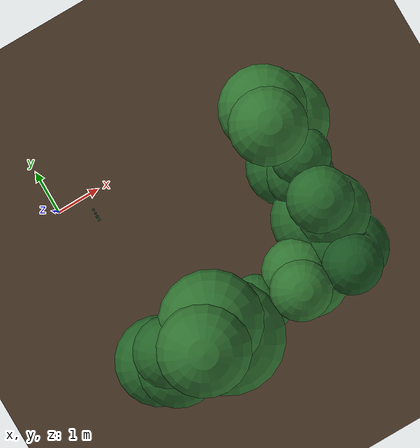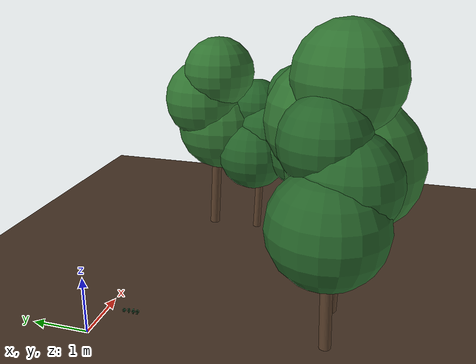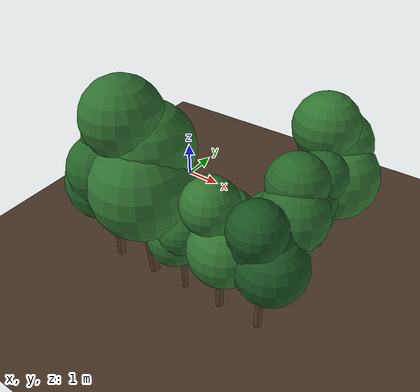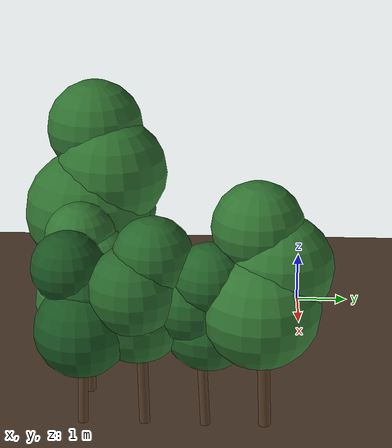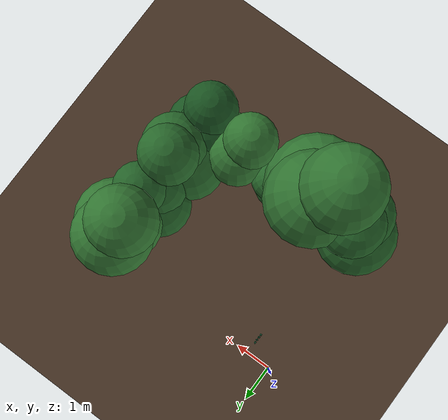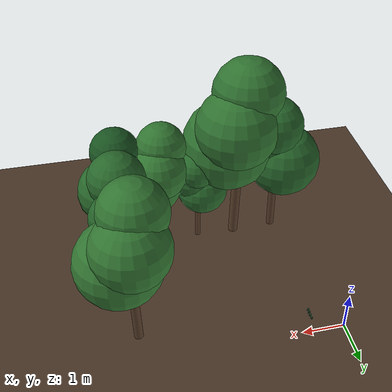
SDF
<sdf version="1.9">
 <world name="jim_field">
  <model name="ground_plane">
   <static>true</static>
   <link name="link">
    <collision name="collision">
     <geometry><plane><normal>0 0 1</normal><size>40 40</size></plane></geometry>
    </collision>
    <visual name="visual">
     <geometry><plane><normal>0 0 1</normal><size>40 40</size></plane></geometry>
     <material>
      <ambient>0.20 0.15 0.11 1</ambient>
      <diffuse>0.30 0.22 0.16 1</diffuse>
      <specular>0.01 0.01 0.01 1</specular>
     </material>
    </visual>
   </link>
  </model>
  <model name="field">
   <static>true</static>
   <pose>0.1837 -0.2516 0 0 0 0</pose>
   <model name="crop_33">
    <static>true</static>
    <pose>0.4928 -0.3405 0 0 0 0</pose>
    <link name="link">
     <visual name="stem">
      <pose>0 0 0.0431 0 0 0</pose>
      <geometry><cylinder><radius>0.0027</radius><length>0.0862</length></cylinder></geometry>
      <material>
       <ambient>0.10 0.22 0.09 1</ambient>
       <diffuse>0.20 0.40 0.16 1</diffuse>
       <specular>0.05 0.06 0.05 1</specular>
      </material>
     </visual>
     <visual name="leaflet_0_0">
      <pose>-0.0174 0.0065 0.0259 0 -0.300 2.7829</pose>
      <geometry><ellipsoid><radii>0.0170 0.0105 0.0016</radii></ellipsoid></geometry>
      <material>
       <ambient>0.096 0.243 0.144 1</ambient>
       <diffuse>0.182 0.466 0.300 1</diffuse>
       <specular>0.05 0.06 0.05 1</specular>
      </material>
     </visual>
     <visual name="leaflet_0_1">
      <pose>0.0174 -0.0065 0.0259 0 -0.300 5.9245</pose>
      <geometry><ellipsoid><radii>0.0170 0.0105 0.0016</radii></ellipsoid></geometry>
      <material>
       <ambient>0.096 0.243 0.144 1</ambient>
       <diffuse>0.182 0.466 0.300 1</diffuse>
       <specular>0.05 0.06 0.05 1</specular>
      </material>
     </visual>
     <visual name="leaflet_1_0">
      <pose>-0.0102 -0.0156 0.0437 0 -0.200 4.1329</pose>
      <geometry><ellipsoid><radii>0.0170 0.0105 0.0016</radii></ellipsoid></geometry>
      <material>
       <ambient>0.096 0.243 0.144 1</ambient>
       <diffuse>0.182 0.466 0.300 1</diffuse>
       <specular>0.05 0.06 0.05 1</specular>
      </material>
     </visual>
     <visual name="leaflet_1_1">
      <pose>0.0102 0.0156 0.0437 0 -0.200 7.2745</pose>
      <geometry><ellipsoid><radii>0.0170 0.0105 0.0016</radii></ellipsoid></geometry>
      <material>
       <ambient>0.096 0.243 0.144 1</ambient>
       <diffuse>0.182 0.466 0.300 1</diffuse>
       <specular>0.05 0.06 0.05 1</specular>
      </material>
     </visual>
     <visual name="leaflet_2_0">
      <pose>0.0130 -0.0133 0.0615 0 -0.100 5.4829</pose>
      <geometry><ellipsoid><radii>0.0170 0.0105 0.0016</radii></ellipsoid></geometry>
      <material>
       <ambient>0.096 0.243 0.144 1</ambient>
       <diffuse>0.182 0.466 0.300 1</diffuse>
       <specular>0.05 0.06 0.05 1</specular>
      </material>
     </visual>
     <visual name="leaflet_2_1">
      <pose>-0.0130 0.0133 0.0615 0 -0.100 8.6245</pose>
      <geometry><ellipsoid><radii>0.0170 0.0105 0.0016</radii></ellipsoid></geometry>
      <material>
       <ambient>0.096 0.243 0.144 1</ambient>
       <diffuse>0.182 0.466 0.300 1</diffuse>
       <specular>0.05 0.06 0.05 1</specular>
      </material>
     </visual>
     <visual name="leaflet_terminal">
      <pose>0 0 0.0902 0 -0.12 2.7829</pose>
      <geometry><ellipsoid><radii>0.0215 0.0140 0.0018</radii></ellipsoid></geometry>
      <material>
       <ambient>0.096 0.243 0.144 1</ambient>
       <diffuse>0.182 0.466 0.300 1</diffuse>
       <specular>0.05 0.06 0.05 1</specular>
      </material>
     </visual>
    </link>
   </model>
   <model name="crop_50">
    <static>true</static>
    <pose>0.4938 -0.2620 0 0 0 0</pose>
    <link name="link">
     <visual name="stem">
      <pose>0 0 0.0416 0 0 0</pose>
      <geometry><cylinder><radius>0.0027</radius><length>0.0831</length></cylinder></geometry>
      <material>
       <ambient>0.10 0.22 0.09 1</ambient>
       <diffuse>0.20 0.40 0.16 1</diffuse>
       <specular>0.05 0.06 0.05 1</specular>
      </material>
     </visual>
     <visual name="leaflet_0_0">
      <pose>0.0183 -0.0024 0.0249 0 -0.300 6.1531</pose>
      <geometry><ellipsoid><radii>0.0170 0.0105 0.0016</radii></ellipsoid></geometry>
      <material>
       <ambient>0.075 0.208 0.116 1</ambient>
       <diffuse>0.140 0.396 0.251 1</diffuse>
       <specular>0.05 0.06 0.05 1</specular>
      </material>
     </visual>
     <visual name="leaflet_0_1">
      <pose>-0.0183 0.0024 0.0249 0 -0.300 9.2947</pose>
      <geometry><ellipsoid><radii>0.0170 0.0105 0.0016</radii></ellipsoid></geometry>
      <material>
       <ambient>0.075 0.208 0.116 1</ambient>
       <diffuse>0.140 0.396 0.251 1</diffuse>
       <specular>0.05 0.06 0.05 1</specular>
      </material>
     </visual>
     <visual name="leaflet_1_0">
      <pose>0.0063 0.0173 0.0378 0 -0.200 7.5031</pose>
      <geometry><ellipsoid><radii>0.0170 0.0105 0.0016</radii></ellipsoid></geometry>
      <material>
       <ambient>0.075 0.208 0.116 1</ambient>
       <diffuse>0.140 0.396 0.251 1</diffuse>
       <specular>0.05 0.06 0.05 1</specular>
      </material>
     </visual>
     <visual name="leaflet_1_1">
      <pose>-0.0063 -0.0173 0.0378 0 -0.200 10.6447</pose>
      <geometry><ellipsoid><radii>0.0170 0.0105 0.0016</radii></ellipsoid></geometry>
      <material>
       <ambient>0.075 0.208 0.116 1</ambient>
       <diffuse>0.140 0.396 0.251 1</diffuse>
       <specular>0.05 0.06 0.05 1</specular>
      </material>
     </visual>
     <visual name="leaflet_2_0">
      <pose>-0.0155 0.0100 0.0507 0 -0.100 8.8531</pose>
      <geometry><ellipsoid><radii>0.0170 0.0105 0.0016</radii></ellipsoid></geometry>
      <material>
       <ambient>0.075 0.208 0.116 1</ambient>
       <diffuse>0.140 0.396 0.251 1</diffuse>
       <specular>0.05 0.06 0.05 1</specular>
      </material>
     </visual>
     <visual name="leaflet_2_1">
      <pose>0.0155 -0.0100 0.0507 0 -0.100 11.9947</pose>
      <geometry><ellipsoid><radii>0.0170 0.0105 0.0016</radii></ellipsoid></geometry>
      <material>
       <ambient>0.075 0.208 0.116 1</ambient>
       <diffuse>0.140 0.396 0.251 1</diffuse>
       <specular>0.05 0.06 0.05 1</specular>
      </material>
     </visual>
     <visual name="leaflet_3_0">
      <pose>-0.0131 -0.0129 0.0636 0 0.000 10.2031</pose>
      <geometry><ellipsoid><radii>0.0170 0.0105 0.0016</radii></ellipsoid></geometry>
      <material>
       <ambient>0.075 0.208 0.116 1</ambient>
       <diffuse>0.140 0.396 0.251 1</diffuse>
       <specular>0.05 0.06 0.05 1</specular>
      </material>
     </visual>
     <visual name="leaflet_3_1">
      <pose>0.0131 0.0129 0.0636 0 0.000 13.3447</pose>
      <geometry><ellipsoid><radii>0.0170 0.0105 0.0016</radii></ellipsoid></geometry>
      <material>
       <ambient>0.075 0.208 0.116 1</ambient>
       <diffuse>0.140 0.396 0.251 1</diffuse>
       <specular>0.05 0.06 0.05 1</specular>
      </material>
     </visual>
     <visual name="leaflet_terminal">
      <pose>0 0 0.0871 0 -0.12 6.1531</pose>
      <geometry><ellipsoid><radii>0.0215 0.0140 0.0018</radii></ellipsoid></geometry>
      <material>
       <ambient>0.075 0.208 0.116 1</ambient>
       <diffuse>0.140 0.396 0.251 1</diffuse>
       <specular>0.05 0.06 0.05 1</specular>
      </material>
     </visual>
    </link>
   </model>
   <model name="crop_67">
    <static>true</static>
    <pose>0.4985 -0.1746 0 0 0 0</pose>
    <link name="link">
     <visual name="stem">
      <pose>0 0 0.0385 0 0 0</pose>
      <geometry><cylinder><radius>0.0026</radius><length>0.0771</length></cylinder></geometry>
      <material>
       <ambient>0.10 0.22 0.09 1</ambient>
       <diffuse>0.20 0.40 0.16 1</diffuse>
       <specular>0.05 0.06 0.05 1</specular>
      </material>
     </visual>
     <visual name="leaflet_0_0">
      <pose>-0.0173 -0.0053 0.0231 0 -0.300 3.4410</pose>
      <geometry><ellipsoid><radii>0.0170 0.0105 0.0016</radii></ellipsoid></geometry>
      <material>
       <ambient>0.070 0.200 0.110 1</ambient>
       <diffuse>0.130 0.380 0.240 1</diffuse>
       <specular>0.05 0.06 0.05 1</specular>
      </material>
     </visual>
     <visual name="leaflet_0_1">
      <pose>0.0173 0.0053 0.0231 0 -0.300 6.5826</pose>
      <geometry><ellipsoid><radii>0.0170 0.0105 0.0016</radii></ellipsoid></geometry>
      <material>
       <ambient>0.070 0.200 0.110 1</ambient>
       <diffuse>0.130 0.380 0.240 1</diffuse>
       <specular>0.05 0.06 0.05 1</specular>
      </material>
     </visual>
     <visual name="leaflet_1_0">
      <pose>0.0014 -0.0181 0.0391 0 -0.200 4.7910</pose>
      <geometry><ellipsoid><radii>0.0170 0.0105 0.0016</radii></ellipsoid></geometry>
      <material>
       <ambient>0.070 0.200 0.110 1</ambient>
       <diffuse>0.130 0.380 0.240 1</diffuse>
       <specular>0.05 0.06 0.05 1</specular>
      </material>
     </visual>
     <visual name="leaflet_1_1">
      <pose>-0.0014 0.0181 0.0391 0 -0.200 7.9326</pose>
      <geometry><ellipsoid><radii>0.0170 0.0105 0.0016</radii></ellipsoid></geometry>
      <material>
       <ambient>0.070 0.200 0.110 1</ambient>
       <diffuse>0.130 0.380 0.240 1</diffuse>
       <specular>0.05 0.06 0.05 1</specular>
      </material>
     </visual>
     <visual name="leaflet_2_0">
      <pose>0.0179 -0.0026 0.0550 0 -0.100 6.1410</pose>
      <geometry><ellipsoid><radii>0.0170 0.0105 0.0016</radii></ellipsoid></geometry>
      <material>
       <ambient>0.070 0.200 0.110 1</ambient>
       <diffuse>0.130 0.380 0.240 1</diffuse>
       <specular>0.05 0.06 0.05 1</specular>
      </material>
     </visual>
     <visual name="leaflet_2_1">
      <pose>-0.0179 0.0026 0.0550 0 -0.100 9.2826</pose>
      <geometry><ellipsoid><radii>0.0170 0.0105 0.0016</radii></ellipsoid></geometry>
      <material>
       <ambient>0.070 0.200 0.110 1</ambient>
       <diffuse>0.130 0.380 0.240 1</diffuse>
       <specular>0.05 0.06 0.05 1</specular>
      </material>
     </visual>
     <visual name="leaflet_terminal">
      <pose>0 0 0.0811 0 -0.12 3.4410</pose>
      <geometry><ellipsoid><radii>0.0215 0.0140 0.0018</radii></ellipsoid></geometry>
      <material>
       <ambient>0.070 0.200 0.110 1</ambient>
       <diffuse>0.130 0.380 0.240 1</diffuse>
       <specular>0.05 0.06 0.05 1</specular>
      </material>
     </visual>
    </link>
   </model>
   <model name="crop_84">
    <static>true</static>
    <pose>0.4932 -0.0889 0 0 0 0</pose>
    <link name="link">
     <visual name="stem">
      <pose>0 0 0.0365 0 0 0</pose>
      <geometry><cylinder><radius>0.0026</radius><length>0.0731</length></cylinder></geometry>
      <material>
       <ambient>0.10 0.22 0.09 1</ambient>
       <diffuse>0.20 0.40 0.16 1</diffuse>
       <specular>0.05 0.06 0.05 1</specular>
      </material>
     </visual>
     <visual name="leaflet_0_0">
      <pose>-0.0137 0.0115 0.0219 0 -0.300 2.4420</pose>
      <geometry><ellipsoid><radii>0.0170 0.0105 0.0016</radii></ellipsoid></geometry>
      <material>
       <ambient>0.090 0.233 0.137 1</ambient>
       <diffuse>0.170 0.447 0.287 1</diffuse>
       <specular>0.05 0.06 0.05 1</specular>
      </material>
     </visual>
     <visual name="leaflet_0_1">
      <pose>0.0137 -0.0115 0.0219 0 -0.300 5.5836</pose>
      <geometry><ellipsoid><radii>0.0170 0.0105 0.0016</radii></ellipsoid></geometry>
      <material>
       <ambient>0.090 0.233 0.137 1</ambient>
       <diffuse>0.170 0.447 0.287 1</diffuse>
       <specular>0.05 0.06 0.05 1</specular>
      </material>
     </visual>
     <visual name="leaflet_1_0">
      <pose>-0.0142 -0.0108 0.0370 0 -0.200 3.7920</pose>
      <geometry><ellipsoid><radii>0.0170 0.0105 0.0016</radii></ellipsoid></geometry>
      <material>
       <ambient>0.090 0.233 0.137 1</ambient>
       <diffuse>0.170 0.447 0.287 1</diffuse>
       <specular>0.05 0.06 0.05 1</specular>
      </material>
     </visual>
     <visual name="leaflet_1_1">
      <pose>0.0142 0.0108 0.0370 0 -0.200 6.9336</pose>
      <geometry><ellipsoid><radii>0.0170 0.0105 0.0016</radii></ellipsoid></geometry>
      <material>
       <ambient>0.090 0.233 0.137 1</ambient>
       <diffuse>0.170 0.447 0.287 1</diffuse>
       <specular>0.05 0.06 0.05 1</specular>
      </material>
     </visual>
     <visual name="leaflet_2_0">
      <pose>0.0075 -0.0163 0.0521 0 -0.100 5.1420</pose>
      <geometry><ellipsoid><radii>0.0170 0.0105 0.0016</radii></ellipsoid></geometry>
      <material>
       <ambient>0.090 0.233 0.137 1</ambient>
       <diffuse>0.170 0.447 0.287 1</diffuse>
       <specular>0.05 0.06 0.05 1</specular>
      </material>
     </visual>
     <visual name="leaflet_2_1">
      <pose>-0.0075 0.0163 0.0521 0 -0.100 8.2836</pose>
      <geometry><ellipsoid><radii>0.0170 0.0105 0.0016</radii></ellipsoid></geometry>
      <material>
       <ambient>0.090 0.233 0.137 1</ambient>
       <diffuse>0.170 0.447 0.287 1</diffuse>
       <specular>0.05 0.06 0.05 1</specular>
      </material>
     </visual>
     <visual name="leaflet_terminal">
      <pose>0 0 0.0771 0 -0.12 2.4420</pose>
      <geometry><ellipsoid><radii>0.0215 0.0140 0.0018</radii></ellipsoid></geometry>
      <material>
       <ambient>0.090 0.233 0.137 1</ambient>
       <diffuse>0.170 0.447 0.287 1</diffuse>
       <specular>0.05 0.06 0.05 1</specular>
      </material>
     </visual>
    </link>
   </model>
   <model name="tree_13">
    <static>true</static>
    <pose>4.5500 -0.5071 0 0 0 0</pose>
    <link name="link">
     <visual name="trunk">
      <pose>0 0 0.9456 0.0382 0.0143 0</pose>
      <geometry><cylinder><radius>0.1051</radius><length>1.8913</length></cylinder></geometry>
      <material>
       <ambient>0.16 0.11 0.07 1</ambient>
       <diffuse>0.34 0.24 0.16 1</diffuse>
       <specular>0.03 0.03 0.03 1</specular>
      </material>
     </visual>
     <visual name="foliage_0">
      <pose>0.2160 -0.0823 2.3284 0 0 0</pose>
      <geometry><sphere><radius>0.9877</radius></sphere></geometry>
      <material>
       <ambient>0.089 0.229 0.090 1</ambient>
       <diffuse>0.199 0.468 0.199 1</diffuse>
       <specular>0.02 0.03 0.02 1</specular>
      </material>
     </visual>
     <visual name="foliage_1">
      <pose>-0.0380 0.2280 2.9588 0 0 0</pose>
      <geometry><sphere><radius>0.8721</radius></sphere></geometry>
      <material>
       <ambient>0.089 0.229 0.090 1</ambient>
       <diffuse>0.199 0.468 0.199 1</diffuse>
       <specular>0.02 0.03 0.02 1</specular>
      </material>
     </visual>
     <visual name="foliage_2">
      <pose>-0.1776 -0.1479 3.5892 0 0 0</pose>
      <geometry><sphere><radius>0.7565</radius></sphere></geometry>
      <material>
       <ambient>0.089 0.229 0.090 1</ambient>
       <diffuse>0.199 0.468 0.199 1</diffuse>
       <specular>0.02 0.03 0.02 1</specular>
      </material>
     </visual>
    </link>
   </model>
   <model name="tree_14">
    <static>true</static>
    <pose>4.5500 -1.5214 0 0 0 0</pose>
    <link name="link">
     <visual name="trunk">
      <pose>0 0 0.7443 0.0471 -0.0184 0</pose>
      <geometry><cylinder><radius>0.0827</radius><length>1.4886</length></cylinder></geometry>
      <material>
       <ambient>0.16 0.11 0.07 1</ambient>
       <diffuse>0.34 0.24 0.16 1</diffuse>
       <specular>0.03 0.03 0.03 1</specular>
      </material>
     </visual>
     <visual name="foliage_0">
      <pose>-0.1594 0.0877 1.8326 0 0 0</pose>
      <geometry><sphere><radius>0.7774</radius></sphere></geometry>
      <material>
       <ambient>0.068 0.196 0.073 1</ambient>
       <diffuse>0.144 0.392 0.161 1</diffuse>
       <specular>0.02 0.03 0.02 1</specular>
      </material>
     </visual>
     <visual name="foliage_1">
      <pose>0.0048 -0.1819 2.3288 0 0 0</pose>
      <geometry><sphere><radius>0.6864</radius></sphere></geometry>
      <material>
       <ambient>0.068 0.196 0.073 1</ambient>
       <diffuse>0.144 0.392 0.161 1</diffuse>
       <specular>0.02 0.03 0.02 1</specular>
      </material>
     </visual>
     <visual name="foliage_2">
      <pose>0.1546 0.0959 2.8250 0 0 0</pose>
      <geometry><sphere><radius>0.5954</radius></sphere></geometry>
      <material>
       <ambient>0.068 0.196 0.073 1</ambient>
       <diffuse>0.144 0.392 0.161 1</diffuse>
       <specular>0.02 0.03 0.02 1</specular>
      </material>
     </visual>
    </link>
   </model>
   <model name="tree_15">
    <static>true</static>
    <pose>4.5500 -2.5357 0 0 0 0</pose>
    <link name="link">
     <visual name="trunk">
      <pose>0 0 0.8263 0.0131 0.0296 0</pose>
      <geometry><cylinder><radius>0.0918</radius><length>1.6525</length></cylinder></geometry>
      <material>
       <ambient>0.16 0.11 0.07 1</ambient>
       <diffuse>0.34 0.24 0.16 1</diffuse>
       <specular>0.03 0.03 0.03 1</specular>
      </material>
     </visual>
     <visual name="foliage_0">
      <pose>-0.1855 -0.0799 2.0345 0 0 0</pose>
      <geometry><sphere><radius>0.8630</radius></sphere></geometry>
      <material>
       <ambient>0.074 0.205 0.078 1</ambient>
       <diffuse>0.159 0.413 0.171 1</diffuse>
       <specular>0.02 0.03 0.02 1</specular>
      </material>
     </visual>
     <visual name="foliage_1">
      <pose>0.1626 -0.1198 2.5853 0 0 0</pose>
      <geometry><sphere><radius>0.7620</radius></sphere></geometry>
      <material>
       <ambient>0.074 0.205 0.078 1</ambient>
       <diffuse>0.159 0.413 0.171 1</diffuse>
       <specular>0.02 0.03 0.02 1</specular>
      </material>
     </visual>
     <visual name="foliage_2">
      <pose>0.0213 0.2009 3.1361 0 0 0</pose>
      <geometry><sphere><radius>0.6610</radius></sphere></geometry>
      <material>
       <ambient>0.074 0.205 0.078 1</ambient>
       <diffuse>0.159 0.413 0.171 1</diffuse>
       <specular>0.02 0.03 0.02 1</specular>
      </material>
     </visual>
    </link>
   </model>
   <model name="tree_16">
    <static>true</static>
    <pose>4.5500 -3.5500 0 0 0 0</pose>
    <link name="link">
     <visual name="trunk">
      <pose>0 0 0.7605 -0.0426 -0.0038 0</pose>
      <geometry><cylinder><radius>0.0845</radius><length>1.5209</length></cylinder></geometry>
      <material>
       <ambient>0.16 0.11 0.07 1</ambient>
       <diffuse>0.34 0.24 0.16 1</diffuse>
       <specular>0.03 0.03 0.03 1</specular>
      </material>
     </visual>
     <visual name="foliage_0">
      <pose>0.1812 0.0416 1.8724 0 0 0</pose>
      <geometry><sphere><radius>0.7943</radius></sphere></geometry>
      <material>
       <ambient>0.052 0.172 0.061 1</ambient>
       <diffuse>0.104 0.335 0.133 1</diffuse>
       <specular>0.02 0.03 0.02 1</specular>
      </material>
     </visual>
     <visual name="foliage_1">
      <pose>-0.1274 0.1354 2.3794 0 0 0</pose>
      <geometry><sphere><radius>0.7013</radius></sphere></geometry>
      <material>
       <ambient>0.052 0.172 0.061 1</ambient>
       <diffuse>0.104 0.335 0.133 1</diffuse>
       <specular>0.02 0.03 0.02 1</specular>
      </material>
     </visual>
     <visual name="foliage_2">
      <pose>-0.0526 -0.1783 2.8864 0 0 0</pose>
      <geometry><sphere><radius>0.6084</radius></sphere></geometry>
      <material>
       <ambient>0.052 0.172 0.061 1</ambient>
       <diffuse>0.104 0.335 0.133 1</diffuse>
       <specular>0.02 0.03 0.02 1</specular>
      </material>
     </visual>
    </link>
   </model>
   <model name="tree_17">
    <static>true</static>
    <pose>3.5389 -3.5500 0 0 0 0</pose>
    <link name="link">
     <visual name="trunk">
      <pose>0 0 0.7699 -0.0213 0.0145 0</pose>
      <geometry><cylinder><radius>0.0855</radius><length>1.5398</length></cylinder></geometry>
      <material>
       <ambient>0.16 0.11 0.07 1</ambient>
       <diffuse>0.34 0.24 0.16 1</diffuse>
       <specular>0.03 0.03 0.03 1</specular>
      </material>
     </visual>
     <visual name="foliage_0">
      <pose>0.1719 -0.0766 1.8957 0 0 0</pose>
      <geometry><sphere><radius>0.8041</radius></sphere></geometry>
      <material>
       <ambient>0.089 0.229 0.089 1</ambient>
       <diffuse>0.198 0.467 0.198 1</diffuse>
       <specular>0.02 0.03 0.02 1</specular>
      </material>
     </visual>
     <visual name="foliage_1">
      <pose>-0.0207 0.1871 2.4090 0 0 0</pose>
      <geometry><sphere><radius>0.7100</radius></sphere></geometry>
      <material>
       <ambient>0.089 0.229 0.089 1</ambient>
       <diffuse>0.198 0.467 0.198 1</diffuse>
       <specular>0.02 0.03 0.02 1</specular>
      </material>
     </visual>
     <visual name="foliage_2">
      <pose>-0.1510 -0.1123 2.9223 0 0 0</pose>
      <geometry><sphere><radius>0.6159</radius></sphere></geometry>
      <material>
       <ambient>0.089 0.229 0.089 1</ambient>
       <diffuse>0.198 0.467 0.198 1</diffuse>
       <specular>0.02 0.03 0.02 1</specular>
      </material>
     </visual>
    </link>
   </model>
   <model name="tree_18">
    <static>true</static>
    <pose>2.5278 -3.5500 0 0 0 0</pose>
    <link name="link">
     <visual name="trunk">
      <pose>0 0 0.6133 0.0094 -0.0116 0</pose>
      <geometry><cylinder><radius>0.0681</radius><length>1.2266</length></cylinder></geometry>
      <material>
       <ambient>0.16 0.11 0.07 1</ambient>
       <diffuse>0.34 0.24 0.16 1</diffuse>
       <specular>0.03 0.03 0.03 1</specular>
      </material>
     </visual>
     <visual name="foliage_0">
      <pose>-0.1413 -0.0500 1.5101 0 0 0</pose>
      <geometry><sphere><radius>0.6405</radius></sphere></geometry>
      <material>
       <ambient>0.073 0.205 0.077 1</ambient>
       <diffuse>0.158 0.411 0.171 1</diffuse>
       <specular>0.02 0.03 0.02 1</specular>
      </material>
     </visual>
     <visual name="foliage_1">
      <pose>0.1145 -0.0967 1.9189 0 0 0</pose>
      <geometry><sphere><radius>0.5656</radius></sphere></geometry>
      <material>
       <ambient>0.073 0.205 0.077 1</ambient>
       <diffuse>0.158 0.411 0.171 1</diffuse>
       <specular>0.02 0.03 0.02 1</specular>
      </material>
     </visual>
     <visual name="foliage_2">
      <pose>0.0257 0.1477 2.3278 0 0 0</pose>
      <geometry><sphere><radius>0.4906</radius></sphere></geometry>
      <material>
       <ambient>0.073 0.205 0.077 1</ambient>
       <diffuse>0.158 0.411 0.171 1</diffuse>
       <specular>0.02 0.03 0.02 1</specular>
      </material>
     </visual>
    </link>
   </model>
   <model name="tree_19">
    <static>true</static>
    <pose>1.5167 -3.5500 0 0 0 0</pose>
    <link name="link">
     <visual name="trunk">
      <pose>0 0 1.0993 0.0239 -0.0459 0</pose>
      <geometry><cylinder><radius>0.1221</radius><length>2.1985</length></cylinder></geometry>
      <material>
       <ambient>0.16 0.11 0.07 1</ambient>
       <diffuse>0.34 0.24 0.16 1</diffuse>
       <specular>0.03 0.03 0.03 1</specular>
      </material>
     </visual>
     <visual name="foliage_0">
      <pose>0.1816 -0.1981 2.7066 0 0 0</pose>
      <geometry><sphere><radius>1.1481</radius></sphere></geometry>
      <material>
       <ambient>0.086 0.225 0.087 1</ambient>
       <diffuse>0.191 0.457 0.194 1</diffuse>
       <specular>0.02 0.03 0.02 1</specular>
      </material>
     </visual>
     <visual name="foliage_1">
      <pose>0.0793 0.2567 3.4394 0 0 0</pose>
      <geometry><sphere><radius>1.0138</radius></sphere></geometry>
      <material>
       <ambient>0.086 0.225 0.087 1</ambient>
       <diffuse>0.191 0.457 0.194 1</diffuse>
       <specular>0.02 0.03 0.02 1</specular>
      </material>
     </visual>
     <visual name="foliage_2">
      <pose>-0.2617 -0.0611 4.1723 0 0 0</pose>
      <geometry><sphere><radius>0.8794</radius></sphere></geometry>
      <material>
       <ambient>0.086 0.225 0.087 1</ambient>
       <diffuse>0.191 0.457 0.194 1</diffuse>
       <specular>0.02 0.03 0.02 1</specular>
      </material>
     </visual>
    </link>
   </model>
   <model name="tree_20">
    <static>true</static>
    <pose>0.5056 -3.5500 0 0 0 0</pose>
    <link name="link">
     <visual name="trunk">
      <pose>0 0 0.8841 -0.0312 0.0105 0</pose>
      <geometry><cylinder><radius>0.0982</radius><length>1.7681</length></cylinder></geometry>
      <material>
       <ambient>0.16 0.11 0.07 1</ambient>
       <diffuse>0.34 0.24 0.16 1</diffuse>
       <specular>0.03 0.03 0.03 1</specular>
      </material>
     </visual>
     <visual name="foliage_0">
      <pose>-0.2142 0.0287 2.1767 0 0 0</pose>
      <geometry><sphere><radius>0.9233</radius></sphere></geometry>
      <material>
       <ambient>0.070 0.200 0.075 1</ambient>
       <diffuse>0.150 0.400 0.165 1</diffuse>
       <specular>0.02 0.03 0.02 1</specular>
      </material>
     </visual>
     <visual name="foliage_1">
      <pose>0.0833 -0.1994 2.7661 0 0 0</pose>
      <geometry><sphere><radius>0.8153</radius></sphere></geometry>
      <material>
       <ambient>0.070 0.200 0.075 1</ambient>
       <diffuse>0.150 0.400 0.165 1</diffuse>
       <specular>0.02 0.03 0.02 1</specular>
      </material>
     </visual>
     <visual name="foliage_2">
      <pose>0.1301 0.1726 3.3555 0 0 0</pose>
      <geometry><sphere><radius>0.7072</radius></sphere></geometry>
      <material>
       <ambient>0.070 0.200 0.075 1</ambient>
       <diffuse>0.150 0.400 0.165 1</diffuse>
       <specular>0.02 0.03 0.02 1</specular>
      </material>
     </visual>
    </link>
   </model>
  </model>
 </world>
</sdf>
